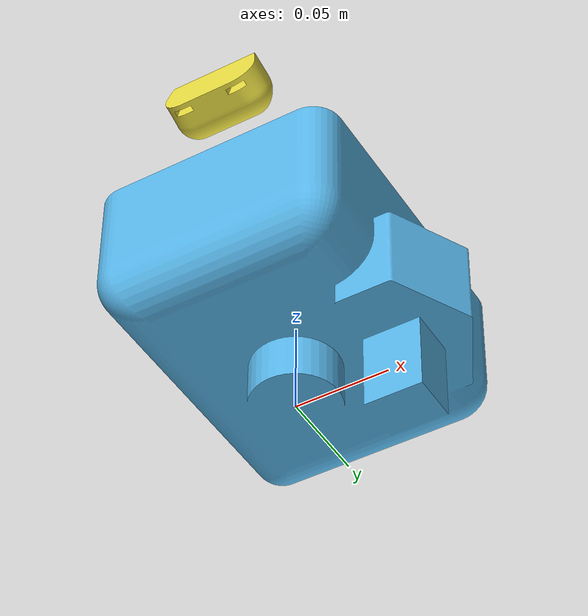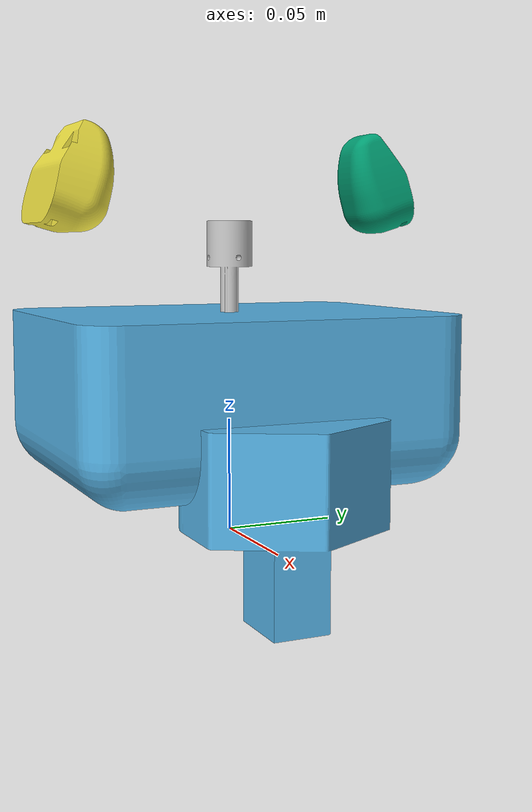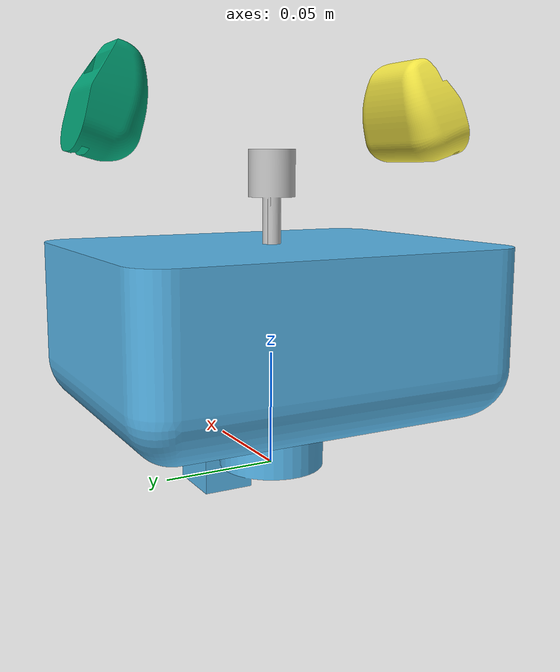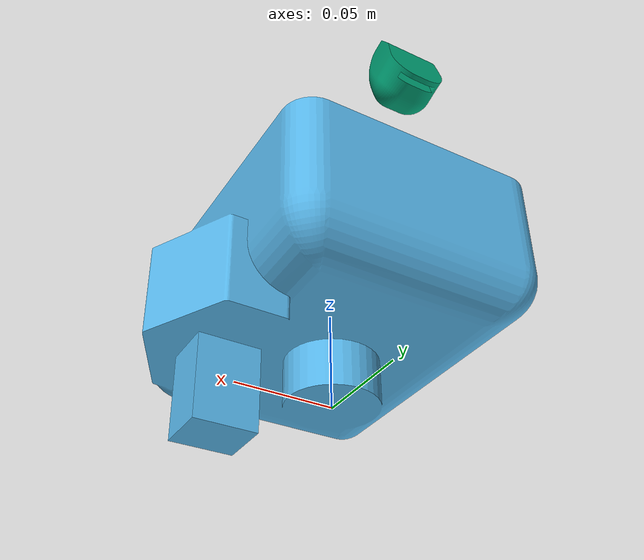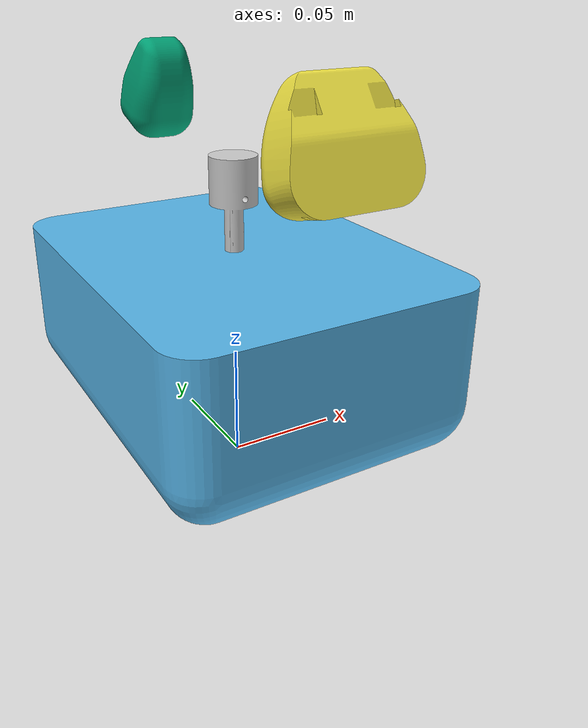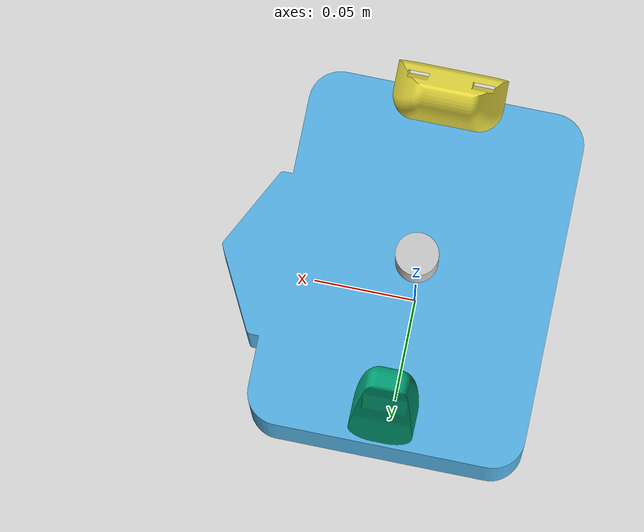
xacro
<?xml version="1.0"?>
<robot name="tercero" xmlns:xacro="http://ros.org/wiki/xacro">

  <xacro:include filename="$(find tercero_description)/urdf/hand_body/hand_body.urdf.xacro"/>
  <xacro:include filename="$(find tercero_description)/urdf/finger/finger.urdf.xacro"/>
  <xacro:include filename="$(find tercero_description)/urdf/third_finger/third_finger.urdf.xacro"/>
  <xacro:include filename="$(find tercero_description)/urdf/common.xacro"/>

  <!-- =============== Link & Joint =============== -->
  <!-- hand_body -->
  <link name="hand_link"/>

  <xacro:hand_body_v0 parent="hand_link" use_gripper_cover="false">
    <origin xyz="0 0 0" rpy="0 ${M_PI} ${M_PI}"/>
  </xacro:hand_body_v0>

  <!-- finger -->
  <xacro:finger_v0 suffix="R" finger_type="f1_short" parent="hand_body_link">
    <origin xyz="0 0 0" rpy="0 0 0"/>
    <axis xyz="0 1 0"/>
  </xacro:finger_v0>

  <xacro:finger_v0 suffix="L" finger_type="f2_short" parent="hand_body_link">
    <origin xyz="0 0 0" rpy="0 0 ${M_PI}"/>
    <axis xyz="0 1 0"/>
  </xacro:finger_v0>

  <!-- third finger -->
  <xacro:third_finger_v0 suffix="3rd" parent="hand_body_link">
    <origin xyz="0 0 0" rpy="0 0 0"/>
    <axis xyz="0 0 -1"/>
  </xacro:third_finger_v0>

</robot>

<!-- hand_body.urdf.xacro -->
<robot xmlns:xacro="http://ros.org/wiki/xacro">

  <xacro:macro name="hand_body_v0" params="parent use_gripper_cover *joint_origin">
    <joint name="hand_link_joint" type="fixed">
      <xacro:insert_block name="joint_origin"/>
      <parent link="${parent}"/>
      <child link="hand_body_link"/>
    </joint>

    <link name="hand_body_link">
      <visual>
        <geometry>
          <xacro:if value="${use_gripper_cover}">
            <mesh filename="package://tercero_description/meshes/DAE/hand_body/hand_body.dae"/>
          </xacro:if>
          <xacro:unless value="${use_gripper_cover}">
            <mesh filename="package://tercero_description/meshes/DAE/hand_body_no_cover/hand_body_no_cover.dae"/>
          </xacro:unless>
        </geometry>
      </visual>
      <collision>
        <geometry>
          <mesh filename="package://tercero_description/meshes/STL/hand_body.stl"/>
        </geometry>
      </collision>
      <inertial>
        <origin xyz="0 0 0"/>
        <mass value="1.173"/>
        <inertia ixx="0.008" ixy="0.0" ixz="0.0"
                 iyy="0.008" iyz="0.0"
                 izz="0.003" />
      </inertial>
    </link>
  </xacro:macro>

</robot>

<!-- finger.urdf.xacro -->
<robot xmlns:xacro="http://ros.org/wiki/xacro">

  <xacro:include filename="$(find tercero_description)/urdf/finger/finger.transmission.xacro"/>

  <xacro:macro name="finger_v0" params="suffix finger_type parent *joint_origin *joint_axis">
  <joint name="finger_${suffix}_joint" type="prismatic">
    <xacro:insert_block name="joint_origin"/>
    <parent link="${parent}"/>
    <child link="finger_${suffix}"/>
    <xacro:insert_block name="joint_axis"/>
    <limit lower="0" upper="0.06" effort="0.5293" velocity="6.159937255" />
  </joint>

  <link name="finger_${suffix}">
    <visual>
      <geometry>
        <mesh filename="package://tercero_description/meshes/DAE/finger/finger_${finger_type}.dae"/>
      </geometry>
    </visual>
    <collision>
      <geometry>
        <mesh filename="package://tercero_description/meshes/STL/finger_${finger_type}.stl"/>
      </geometry>
    </collision>
    <inertial>
      <origin xyz="0 0 0"/>
      <mass value="0.145"/>
      <inertia ixx="0.002" ixy="0.0" ixz="0.0"
               iyy="0.002" iyz="0.0"
               izz="0.0" />
    </inertial>
  </link>

  <xacro:finger_transmission suffix="${suffix}"/>

  </xacro:macro>

</robot>

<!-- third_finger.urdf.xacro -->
<robot xmlns:xacro="http://ros.org/wiki/xacro">

  <xacro:include filename="$(find tercero_description)/urdf/third_finger/third_finger.transmission.xacro"/>

  <xacro:macro name="third_finger_v0" params="suffix parent *joint_origin *joint_axis">
  <joint name="finger_${suffix}_joint" type="prismatic">
    <xacro:insert_block name="joint_origin"/>
    <parent link="${parent}"/>
    <child link="finger_${suffix}"/>
    <xacro:insert_block name="joint_axis"/>
    <limit lower="0" upper="0.035" effort="0.5293" velocity="6.159937255" />
  </joint>

  <link name="finger_${suffix}">
    <visual>
      <geometry>
        <mesh filename="package://tercero_description/meshes/DAE/finger/finger_third.dae"/>
      </geometry>
    </visual>
    <collision>
      <geometry>
        <mesh filename="package://tercero_description/meshes/STL/finger_third.stl"/>
      </geometry>
    </collision>
    <inertial>
      <origin xyz="0 0 0"/>
      <mass value="0.028"/>
      <inertia ixx="0.0" ixy="0.0" ixz="0.0"
               iyy="0.0" iyz="0.0"
               izz="0.0" />
    </inertial>
  </link>

  <xacro:finger_transmission suffix="${suffix}"/>

  </xacro:macro>

</robot>

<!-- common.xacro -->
<robot xmlns:xacro="http://ros.org/wiki/xacro">
  <xacro:property name="M_PI" value="3.14159274"/>

  <xacro:macro name="cylinder_inertial" params="mass radius length *origin">
    <xacro:insert_block name="origin"/>
  <mass value="${mass}"/>
  <inertia ixx="${((radius*radius)/4 + (length*length)/12)*mass}" ixy="0" ixz="0"
       iyy="${((radius*radius)/4 + (length*length)/12)*mass}" iyz="0"
       izz="${(mass*radius*radius)/2}" />
  </xacro:macro>

  <xacro:macro name="box_inertial" params="mass height width depth *origin">
    <xacro:insert_block name="origin"/>
  <mass value="${mass}"/>
  <inertia ixx="${(mass*(width*width+depth*depth))/12}" ixy="0" ixz="0"
       iyy="${(mass*(height*height+depth*depth))/12}" iyz="0"
       izz="${(mass*(height*height+width*width))/12}" />
  </xacro:macro>

  <!-- Macro for calculating inertial matrix-->
  <xacro:macro name="inertia_macro" params="radius height mass *origin">
  <inertial>
    <mass value="${mass}" />
    <xacro:insert_block name="origin" />
    <inertia ixx="${((1 / 4) * mass * radius * radius) + ((1 / 12) * mass * height * height)}" ixy="0.0" ixz="0.0"
      iyy="${((1 / 4) * mass * radius * radius) + ((1 / 12) * mass * height * height)}" iyz="0.0"
      izz="${(1 / 2) * mass * radius * radius}" />
  </inertial>
  </xacro:macro>

</robot>
